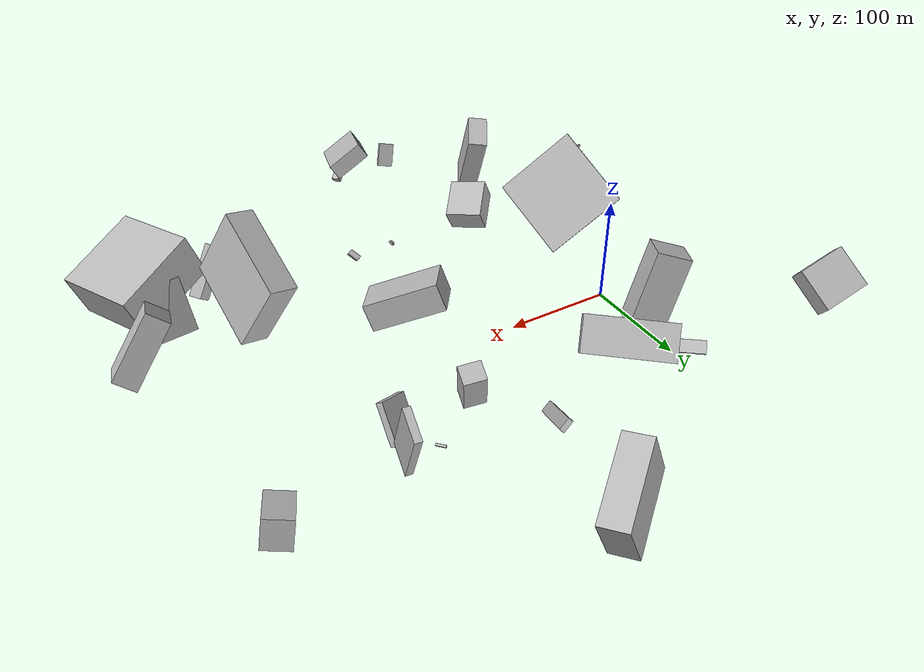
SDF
<sdf version="1.6">
 <world name="default">
  <scene>
   <sky><clouds><speed>12</speed></clouds></sky>
   <ambient>0.4 0.4 0.4 1</ambient>
   <background>0.7 0.7 0.7 1</background>
   <shadows>1</shadows>
  </scene>
  <gravity>0 0 -9.8066</gravity>
  <magnetic_field>6e-06 2.3e-05 -4.2e-05</magnetic_field>
  <physics default="0" name="default_physics" type="ode">
   <ode>
    <solver>
     <type>quick</type>
     <iters>10</iters>
     <sor>1.0</sor>
     <use_dynamic_moi_rescaling>0</use_dynamic_moi_rescaling>
    </solver>
    <constraints>
     <cfm>0</cfm>
     <erp>0.2</erp>
     <contact_max_correcting_vel>100</contact_max_correcting_vel>
     <contact_surface_layer>0.001</contact_surface_layer>
    </constraints>
   </ode>
   <max_step_size>0.004</max_step_size>
   <real_time_factor>1</real_time_factor>
   <real_time_update_rate>250</real_time_update_rate>
  </physics>
  <light name="sun" type="directional">
   <pose>0 0 10 0 0 0</pose>
   <diffuse>0.8 0.8 0.8 1</diffuse>
   <specular>0.2 0.2 0.2 1</specular>
   <attenuation>
    <range>1000</range>
    <constant>0.9</constant>
    <linear>0.01</linear>
    <quadratic>0.001</quadratic>
   </attenuation>
   <direction>-0.5 0.1 -0.9</direction>
  </light>
  <model name="building_1">
   <static>0</static>
   <pose>186.20137271546173 -170.90898076464006 110.45634276866798 1.1889265433385654 0.9036041500946361 -2.9470332999730835</pose>
   <link name="link">
    <gravity>0</gravity>
    <pose>0 0 3.5 0 0 0</pose>
    <collision name="collision"><geometry><box><size>5 30 7</size></box></geometry></collision>
    <visual name="visual">
     <cast_shadows>0</cast_shadows>
     <geometry><box><size>5 30 7</size></box></geometry>
     <material>
      <script>
       <uri>model://HANNAS_wall/materials/scripts</uri>
       <uri>model://HANNAS_wall/materials/textures</uri>
       <name>vrc/HANNAS_wall</name>
      </script>
     </material>
    </visual>
   </link>
  </model>
  <model name="building_2">
   <static>0</static>
   <pose>196.02940453058403 84.53060848858186 25.06208193398997 -0.3494299057992618 1.1720583945291954 -2.1797041267401474</pose>
   <link name="link">
    <gravity>0</gravity>
    <pose>0 0 9.0 0 0 0</pose>
    <collision name="collision"><geometry><box><size>41 20 18</size></box></geometry></collision>
    <visual name="visual">
     <cast_shadows>0</cast_shadows>
     <geometry><box><size>41 20 18</size></box></geometry>
     <material>
      <script>
       <uri>model://HANNAS_wall/materials/scripts</uri>
       <uri>model://HANNAS_wall/materials/textures</uri>
       <name>vrc/HANNAS_wall</name>
      </script>
     </material>
    </visual>
   </link>
  </model>
  <model name="building_3">
   <static>0</static>
   <pose>192.6471588609739 -143.28468583819912 32.26857415210863 -2.624436014807283 -0.9673324314318508 1.612968278122777</pose>
   <link name="link">
    <gravity>0</gravity>
    <pose>0 0 5.5 0 0 0</pose>
    <collision name="collision"><geometry><box><size>2 6 11</size></box></geometry></collision>
    <visual name="visual">
     <cast_shadows>0</cast_shadows>
     <geometry><box><size>2 6 11</size></box></geometry>
     <material>
      <script>
       <uri>model://HANNAS_wall/materials/scripts</uri>
       <uri>model://HANNAS_wall/materials/textures</uri>
       <name>vrc/HANNAS_wall</name>
      </script>
     </material>
    </visual>
   </link>
  </model>
  <model name="building_4">
   <static>0</static>
   <pose>294.91862938537844 142.70676017123563 51.89939325673779 0.06816304549267087 0.48902439102018486 1.4085244125220904</pose>
   <link name="link">
    <gravity>0</gravity>
    <pose>0 0 35.0 0 0 0</pose>
    <collision name="collision"><geometry><box><size>26 6 70</size></box></geometry></collision>
    <visual name="visual">
     <cast_shadows>0</cast_shadows>
     <geometry><box><size>26 6 70</size></box></geometry>
     <material>
      <script>
       <uri>model://HANNAS_wall/materials/scripts</uri>
       <uri>model://HANNAS_wall/materials/textures</uri>
       <name>vrc/HANNAS_wall</name>
      </script>
     </material>
    </visual>
   </link>
  </model>
  <model name="building_5">
   <static>0</static>
   <pose>395.504228544379 -131.76517016275585 36.425061591045264 -1.4223456934041538 -0.21484442515885177 1.4708738391443836</pose>
   <link name="link">
    <gravity>0</gravity>
    <pose>0 0 19.5 0 0 0</pose>
    <collision name="collision"><geometry><box><size>2 53 39</size></box></geometry></collision>
    <visual name="visual">
     <cast_shadows>0</cast_shadows>
     <geometry><box><size>2 53 39</size></box></geometry>
     <material>
      <script>
       <uri>model://HANNAS_wall/materials/scripts</uri>
       <uri>model://HANNAS_wall/materials/textures</uri>
       <name>vrc/HANNAS_wall</name>
      </script>
     </material>
    </visual>
   </link>
  </model>
  <model name="building_6">
   <static>0</static>
   <pose>176.36529700896438 244.83872241635783 57.1170272752344 -3.003795095418912 0.446709488823586 0.6657346920518242</pose>
   <link name="link">
    <gravity>0</gravity>
    <pose>0 0 27.5 0 0 0</pose>
    <collision name="collision"><geometry><box><size>73 25 55</size></box></geometry></collision>
    <visual name="visual">
     <cast_shadows>0</cast_shadows>
     <geometry><box><size>73 25 55</size></box></geometry>
     <material>
      <script>
       <uri>model://HANNAS_wall/materials/scripts</uri>
       <uri>model://HANNAS_wall/materials/textures</uri>
       <name>vrc/HANNAS_wall</name>
      </script>
     </material>
    </visual>
   </link>
  </model>
  <model name="building_7">
   <static>0</static>
   <pose>-65.57337533292838 -167.54401329537245 45.52380159286431 3.0590517710436593 0.6519127246457596 -1.1001478427915368</pose>
   <link name="link">
    <gravity>0</gravity>
    <pose>0 0 1.0 0 0 0</pose>
    <collision name="collision"><geometry><box><size>35 59 2</size></box></geometry></collision>
    <visual name="visual">
     <cast_shadows>0</cast_shadows>
     <geometry><box><size>35 59 2</size></box></geometry>
     <material>
      <script>
       <uri>model://HANNAS_wall/materials/scripts</uri>
       <uri>model://HANNAS_wall/materials/textures</uri>
       <name>vrc/HANNAS_wall</name>
      </script>
     </material>
    </visual>
   </link>
  </model>
  <model name="building_8">
   <static>0</static>
   <pose>211.4251248029969 10.476153748865212 67.80191744204211 0.14654996426187403 0.3760681787948298 -0.583186645049372</pose>
   <link name="link">
    <gravity>0</gravity>
    <pose>0 0 12.0 0 0 0</pose>
    <collision name="collision"><geometry><box><size>64 37 24</size></box></geometry></collision>
    <visual name="visual">
     <cast_shadows>0</cast_shadows>
     <geometry><box><size>64 37 24</size></box></geometry>
     <material>
      <script>
       <uri>model://HANNAS_wall/materials/scripts</uri>
       <uri>model://HANNAS_wall/materials/textures</uri>
       <name>vrc/HANNAS_wall</name>
      </script>
     </material>
    </visual>
   </link>
  </model>
  <model name="building_9">
   <static>0</static>
   <pose>151.10310016079663 -132.3350399731378 33.47583496431331 -1.6640783974992357 0.24409397687848508 3.068495538323351</pose>
   <link name="link">
    <gravity>0</gravity>
    <pose>0 0 3.5 0 0 0</pose>
    <collision name="collision"><geometry><box><size>2 2 7</size></box></geometry></collision>
    <visual name="visual">
     <cast_shadows>0</cast_shadows>
     <geometry><box><size>2 2 7</size></box></geometry>
     <material>
      <script>
       <uri>model://HANNAS_wall/materials/scripts</uri>
       <uri>model://HANNAS_wall/materials/textures</uri>
       <name>vrc/HANNAS_wall</name>
      </script>
     </material>
    </visual>
   </link>
  </model>
  <model name="building_10">
   <static>0</static>
   <pose>332.95215329380477 -154.04797094467565 52.73723331016758 2.254939737586248 -0.15443671968263892 -0.816770282595381</pose>
   <link name="link">
    <gravity>0</gravity>
    <pose>0 0 11.0 0 0 0</pose>
    <collision name="collision"><geometry><box><size>11 49 22</size></box></geometry></collision>
    <visual name="visual">
     <cast_shadows>0</cast_shadows>
     <geometry><box><size>11 49 22</size></box></geometry>
     <material>
      <script>
       <uri>model://HANNAS_wall/materials/scripts</uri>
       <uri>model://HANNAS_wall/materials/textures</uri>
       <name>vrc/HANNAS_wall</name>
      </script>
     </material>
    </visual>
   </link>
  </model>
  <model name="building_11">
   <static>0</static>
   <pose>403.1719859952594 -206.23393634906643 55.34131211220172 1.4789439063290972 -0.35233405214280333 -2.7210362666355388</pose>
   <link name="link">
    <gravity>0</gravity>
    <pose>0 0 40.0 0 0 0</pose>
    <collision name="collision"><geometry><box><size>80 43 80</size></box></geometry></collision>
    <visual name="visual">
     <cast_shadows>0</cast_shadows>
     <geometry><box><size>80 43 80</size></box></geometry>
     <material>
      <script>
       <uri>model://HANNAS_wall/materials/scripts</uri>
       <uri>model://HANNAS_wall/materials/textures</uri>
       <name>vrc/HANNAS_wall</name>
      </script>
     </material>
    </visual>
   </link>
  </model>
  <model name="building_12">
   <static>0</static>
   <pose>32.58589000281859 -79.03780840157518 52.02866441948919 0.7200729984974297 0.5685683614262511 -2.437358678092031</pose>
   <link name="link">
    <gravity>0</gravity>
    <pose>0 0 40.0 0 0 0</pose>
    <collision name="collision"><geometry><box><size>2 80 80</size></box></geometry></collision>
    <visual name="visual">
     <cast_shadows>0</cast_shadows>
     <geometry><box><size>2 80 80</size></box></geometry>
     <material>
      <script>
       <uri>model://HANNAS_wall/materials/scripts</uri>
       <uri>model://HANNAS_wall/materials/textures</uri>
       <name>vrc/HANNAS_wall</name>
      </script>
     </material>
    </visual>
   </link>
  </model>
  <model name="building_13">
   <static>0</static>
   <pose>260.87378941051634 76.57298175611308 22.32917797119437 -2.146522048647874 0.20130814074024309 -2.7953910867961267</pose>
   <link name="link">
    <gravity>0</gravity>
    <pose>0 0 3.5 0 0 0</pose>
    <collision name="collision"><geometry><box><size>26 37 7</size></box></geometry></collision>
    <visual name="visual">
     <cast_shadows>0</cast_shadows>
     <geometry><box><size>26 37 7</size></box></geometry>
     <material>
      <script>
       <uri>model://HANNAS_wall/materials/scripts</uri>
       <uri>model://HANNAS_wall/materials/textures</uri>
       <name>vrc/HANNAS_wall</name>
      </script>
     </material>
    </visual>
   </link>
  </model>
  <model name="building_14">
   <static>0</static>
   <pose>197.66263429703397 185.84880950311356 75.74150757825474 -0.7059470111414609 -0.571398408455827 1.0914735518488663</pose>
   <link name="link">
    <gravity>0</gravity>
    <pose>0 0 5.0 0 0 0</pose>
    <collision name="collision"><geometry><box><size>80 4 10</size></box></geometry></collision>
    <visual name="visual">
     <cast_shadows>0</cast_shadows>
     <geometry><box><size>80 4 10</size></box></geometry>
     <material>
      <script>
       <uri>model://HANNAS_wall/materials/scripts</uri>
       <uri>model://HANNAS_wall/materials/textures</uri>
       <name>vrc/HANNAS_wall</name>
      </script>
     </material>
    </visual>
   </link>
  </model>
  <model name="building_15">
   <static>0</static>
   <pose>397.2287547390605 149.40641867505974 36.224038544593576 -0.204161003497252 0.13037333251620611 2.6803670248151326</pose>
   <link name="link">
    <gravity>0</gravity>
    <pose>0 0 12.5 0 0 0</pose>
    <collision name="collision"><geometry><box><size>23 34 25</size></box></geometry></collision>
    <visual name="visual">
     <cast_shadows>0</cast_shadows>
     <geometry><box><size>23 34 25</size></box></geometry>
     <material>
      <script>
       <uri>model://HANNAS_wall/materials/scripts</uri>
       <uri>model://HANNAS_wall/materials/textures</uri>
       <name>vrc/HANNAS_wall</name>
      </script>
     </material>
    </visual>
   </link>
  </model>
  <model name="building_16">
   <static>0</static>
   <pose>3.168783897420181 123.78561260251793 23.294556307183175 -3.0219402407402693 0.6503373335139383 0.8623610617450114</pose>
   <link name="link">
    <gravity>0</gravity>
    <pose>0 0 1.0 0 0 0</pose>
    <collision name="collision"><geometry><box><size>12 27 2</size></box></geometry></collision>
    <visual name="visual">
     <cast_shadows>0</cast_shadows>
     <geometry><box><size>12 27 2</size></box></geometry>
     <material>
      <script>
       <uri>model://HANNAS_wall/materials/scripts</uri>
       <uri>model://HANNAS_wall/materials/textures</uri>
       <name>vrc/HANNAS_wall</name>
      </script>
     </material>
    </visual>
   </link>
  </model>
  <model name="building_17">
   <static>0</static>
   <pose>25.135276323977685 -191.64091913534295 28.924576573799932 -2.111427387213266 0.15118968062576219 -0.8010591676993085</pose>
   <link name="link">
    <gravity>0</gravity>
    <pose>0 0 19.5 0 0 0</pose>
    <collision name="collision"><geometry><box><size>36 27 39</size></box></geometry></collision>
    <visual name="visual">
     <cast_shadows>0</cast_shadows>
     <geometry><box><size>36 27 39</size></box></geometry>
     <material>
      <script>
       <uri>model://HANNAS_wall/materials/scripts</uri>
       <uri>model://HANNAS_wall/materials/textures</uri>
       <name>vrc/HANNAS_wall</name>
      </script>
     </material>
    </visual>
   </link>
  </model>
  <model name="building_18">
   <static>0</static>
   <pose>65.93656404726364 114.83171149797606 30.075389822888578 0.6368492607266709 -0.03473188929428117 -0.6692395097388755</pose>
   <link name="link">
    <gravity>0</gravity>
    <pose>0 0 16.5 0 0 0</pose>
    <collision name="collision"><geometry><box><size>80 25 33</size></box></geometry></collision>
    <visual name="visual">
     <cast_shadows>0</cast_shadows>
     <geometry><box><size>80 25 33</size></box></geometry>
     <material>
      <script>
       <uri>model://HANNAS_wall/materials/scripts</uri>
       <uri>model://HANNAS_wall/materials/textures</uri>
       <name>vrc/HANNAS_wall</name>
      </script>
     </material>
    </visual>
   </link>
  </model>
  <model name="building_19">
   <static>0</static>
   <pose>-28.28575969152048 203.66268445642402 115.98117483862958 1.160508383500346 0.8441943914883013 -1.9006754918657989</pose>
   <link name="link">
    <gravity>0</gravity>
    <pose>0 0 20.0 0 0 0</pose>
    <collision name="collision"><geometry><box><size>16 35 40</size></box></geometry></collision>
    <visual name="visual">
     <cast_shadows>0</cast_shadows>
     <geometry><box><size>16 35 40</size></box></geometry>
     <material>
      <script>
       <uri>model://HANNAS_wall/materials/scripts</uri>
       <uri>model://HANNAS_wall/materials/textures</uri>
       <name>vrc/HANNAS_wall</name>
      </script>
     </material>
    </visual>
   </link>
  </model>
  <model name="building_20">
   <static>0</static>
   <pose>407.4634007164811 -68.74358943310453 49.93542200054921 0.9813855349632812 -0.3083492626794069 1.3223717860822235</pose>
   <link name="link">
    <gravity>0</gravity>
    <pose>0 0 11.0 0 0 0</pose>
    <collision name="collision"><geometry><box><size>34 63 22</size></box></geometry></collision>
    <visual name="visual">
     <cast_shadows>0</cast_shadows>
     <geometry><box><size>34 63 22</size></box></geometry>
     <material>
      <script>
       <uri>model://HANNAS_wall/materials/scripts</uri>
       <uri>model://HANNAS_wall/materials/textures</uri>
       <name>vrc/HANNAS_wall</name>
      </script>
     </material>
    </visual>
   </link>
  </model>
  <model name="building_21">
   <static>0</static>
   <pose>86.78277981869024 -250.2527195484853 57.653258603428625 1.3220527234288513 -0.427258043122694 1.4035258939299593</pose>
   <link name="link">
    <gravity>0</gravity>
    <pose>0 0 7.5 0 0 0</pose>
    <collision name="collision"><geometry><box><size>4 23 15</size></box></geometry></collision>
    <visual name="visual">
     <cast_shadows>0</cast_shadows>
     <geometry><box><size>4 23 15</size></box></geometry>
     <material>
      <script>
       <uri>model://HANNAS_wall/materials/scripts</uri>
       <uri>model://HANNAS_wall/materials/textures</uri>
       <name>vrc/HANNAS_wall</name>
      </script>
     </material>
    </visual>
   </link>
  </model>
  <model name="building_22">
   <static>0</static>
   <pose>-3.968161713444002 -218.72112548841196 48.61625904473789 1.4473494696301408 0.44671325956200525 1.0179786839515614</pose>
   <link name="link">
    <gravity>0</gravity>
    <pose>0 0 9.5 0 0 0</pose>
    <collision name="collision"><geometry><box><size>34 78 19</size></box></geometry></collision>
    <visual name="visual">
     <cast_shadows>0</cast_shadows>
     <geometry><box><size>34 78 19</size></box></geometry>
     <material>
      <script>
       <uri>model://HANNAS_wall/materials/scripts</uri>
       <uri>model://HANNAS_wall/materials/textures</uri>
       <name>vrc/HANNAS_wall</name>
      </script>
     </material>
    </visual>
   </link>
  </model>
  <model name="building_23">
   <static>0</static>
   <pose>-51.652089988935266 31.006187469119684 51.126185196438435 -2.9773652940871718 -0.27523277464099266 -0.5282120941948029</pose>
   <link name="link">
    <gravity>0</gravity>
    <pose>0 0 40.0 0 0 0</pose>
    <collision name="collision"><geometry><box><size>34 32 80</size></box></geometry></collision>
    <visual name="visual">
     <cast_shadows>0</cast_shadows>
     <geometry><box><size>34 32 80</size></box></geometry>
     <material>
      <script>
       <uri>model://HANNAS_wall/materials/scripts</uri>
       <uri>model://HANNAS_wall/materials/textures</uri>
       <name>vrc/HANNAS_wall</name>
      </script>
     </material>
    </visual>
   </link>
  </model>
  <model name="building_24">
   <static>0</static>
   <pose>321.7118044670242 -27.69311547124436 78.5321181904549 -0.4408046563649038 -1.054659691808924 2.1280811392246695</pose>
   <link name="link">
    <gravity>0</gravity>
    <pose>0 0 40.0 0 0 0</pose>
    <collision name="collision"><geometry><box><size>72 25 80</size></box></geometry></collision>
    <visual name="visual">
     <cast_shadows>0</cast_shadows>
     <geometry><box><size>72 25 80</size></box></geometry>
     <material>
      <script>
       <uri>model://HANNAS_wall/materials/scripts</uri>
       <uri>model://HANNAS_wall/materials/textures</uri>
       <name>vrc/HANNAS_wall</name>
      </script>
     </material>
    </visual>
   </link>
  </model>
  <model name="building_25">
   <static>0</static>
   <pose>186.28831277796766 -126.00136141461797 153.78157325917385 2.728409790824369 0.9321093568172384 2.4718286361144814</pose>
   <link name="link">
    <gravity>0</gravity>
    <pose>0 0 15.5 0 0 0</pose>
    <collision name="collision"><geometry><box><size>13 54 31</size></box></geometry></collision>
    <visual name="visual">
     <cast_shadows>0</cast_shadows>
     <geometry><box><size>13 54 31</size></box></geometry>
     <material>
      <script>
       <uri>model://HANNAS_wall/materials/scripts</uri>
       <uri>model://HANNAS_wall/materials/textures</uri>
       <name>vrc/HANNAS_wall</name>
      </script>
     </material>
    </visual>
   </link>
  </model>
  <model name="building_26">
   <static>0</static>
   <pose>236.66537454425924 106.63860988095806 5.325608528481722 -1.6660649720746665 -0.560319340556772 -2.4261963530595962</pose>
   <link name="link">
    <gravity>0</gravity>
    <pose>0 0 4.5 0 0 0</pose>
    <collision name="collision"><geometry><box><size>2 2 9</size></box></geometry></collision>
    <visual name="visual">
     <cast_shadows>0</cast_shadows>
     <geometry><box><size>2 2 9</size></box></geometry>
     <material>
      <script>
       <uri>model://HANNAS_wall/materials/scripts</uri>
       <uri>model://HANNAS_wall/materials/textures</uri>
       <name>vrc/HANNAS_wall</name>
      </script>
     </material>
    </visual>
   </link>
  </model>
 </world>
</sdf>
